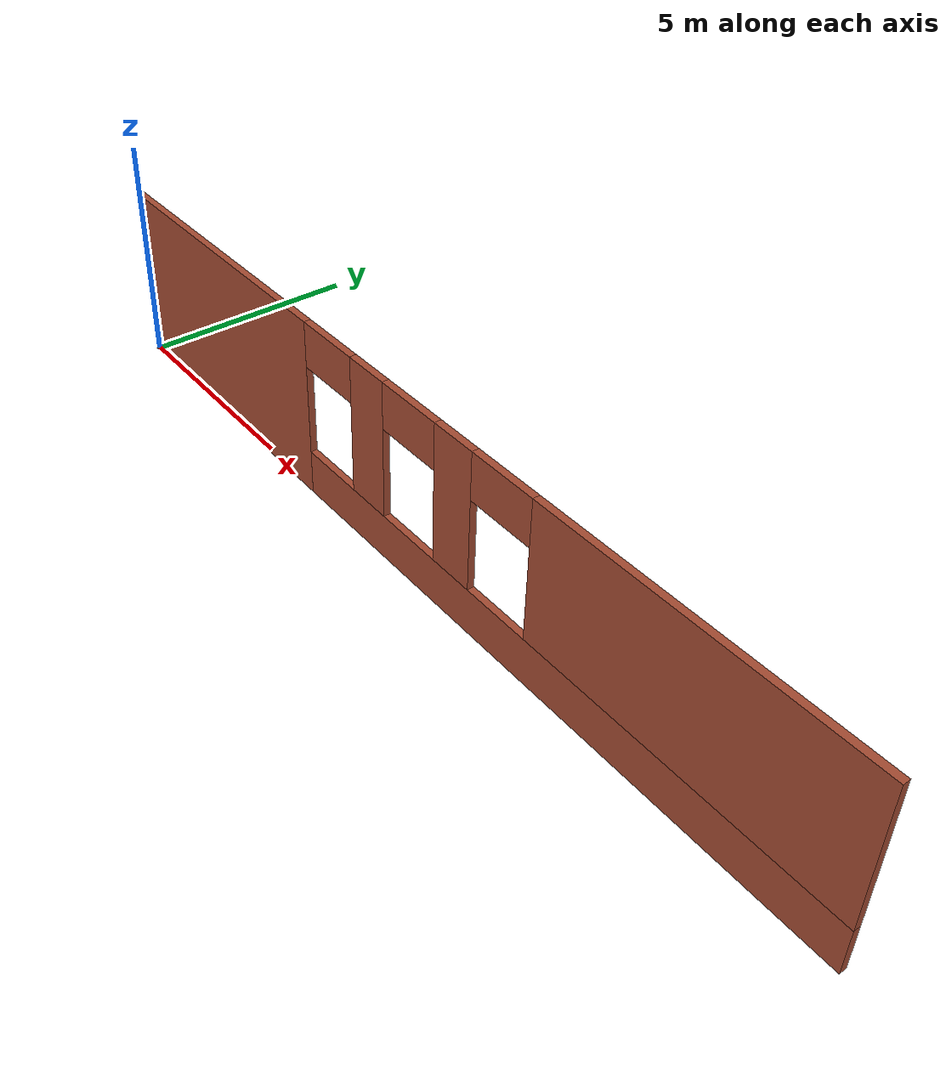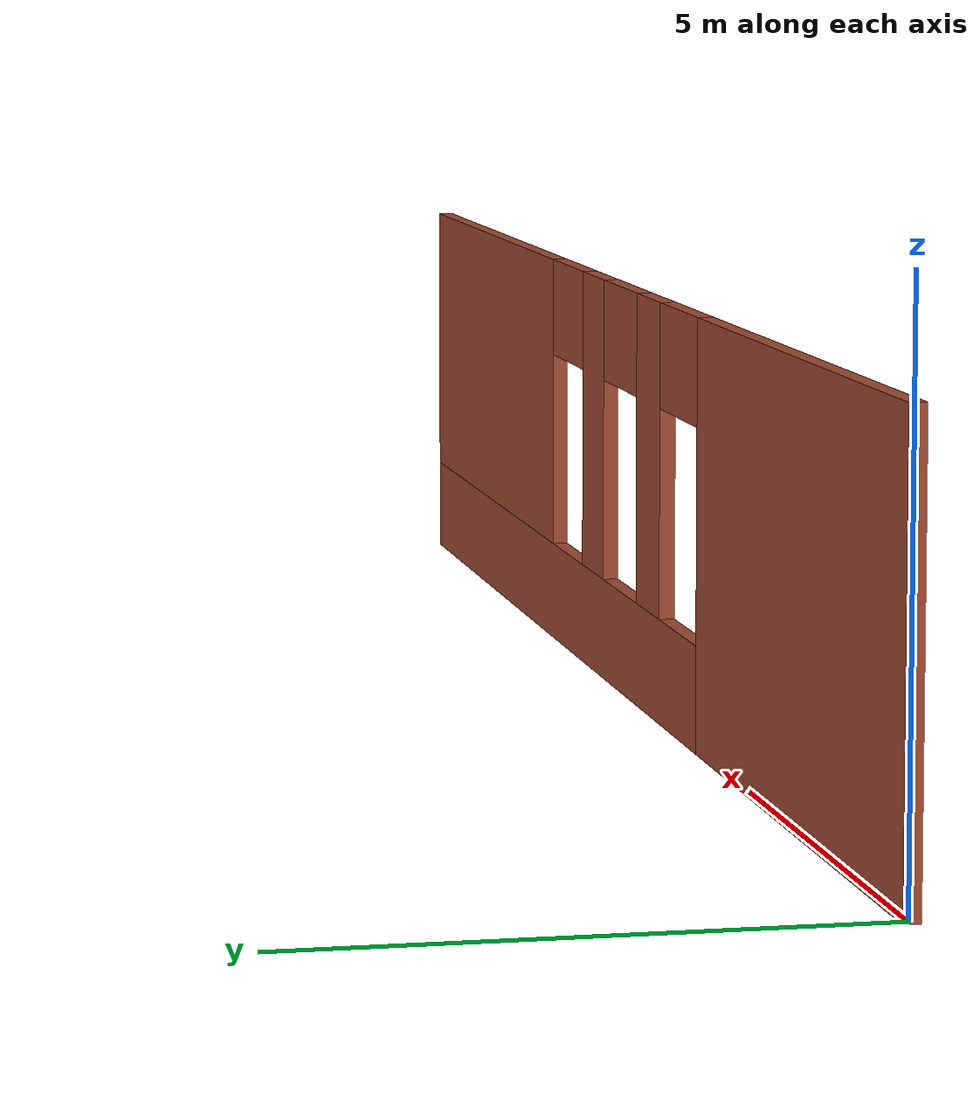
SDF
<?xml version='1.0'?>
<sdf version='1.7'>
  <model name='e_wall_3'>
    <pose>10 0 0 0 -0 0</pose>
    <link name='Wall_10'>
      <pose>-0 0 0 0 -0 0</pose>
      <visual name='Wall_10_Visual_0'>
        <pose>-6.6625 0 2 0 -0 0</pose>
        <geometry>
          <box>
            <size>6.825 0.15 4</size>
          </box>
        </geometry>
        <material>
          <script>
            <uri>model://e_wall_3/scripts</uri>
            <name>Bricks3_12</name>
          </script>
          <ambient>1 1 1 1</ambient>
        </material>
        <meta>
          <layer>0</layer>
        </meta>
      </visual>
      <collision name='Wall_10_Collision_0'>
        <geometry>
          <box>
            <size>6.825 0.15 4</size>
          </box>
        </geometry>
        <pose>-6.6625 0 2 0 -0 0</pose>
      </collision>
      <visual name='Wall_10_Visual_1'>
        <pose>3.4125 0 0.5 0 -0 0</pose>
        <geometry>
          <box>
            <size>13.325 0.15 1</size>
          </box>
        </geometry>
        <material>
          <script>
            <uri>model://e_wall_3/scripts</uri>
            <name>Bricks3_13</name>
          </script>
          <ambient>1 1 1 1</ambient>
        </material>
        <meta>
          <layer>0</layer>
        </meta>
      </visual>
      <collision name='Wall_10_Collision_1'>
        <geometry>
          <box>
            <size>13.325 0.15 1</size>
          </box>
        </geometry>
        <pose>3.4125 0 0.5 0 -0 0</pose>
      </collision>
      <visual name='Wall_10_Visual_2'>
        <pose>-1.25 0 2.5 0 -0 0</pose>
        <geometry>
          <box>
            <size>1 0.15 3</size>
          </box>
        </geometry>
        <material>
          <script>
            <uri>model://e_wall_3/scripts</uri>
            <name>Bricks3_14</name>
          </script>
          <ambient>1 1 1 1</ambient>
        </material>
        <meta>
          <layer>0</layer>
        </meta>
      </visual>
      <collision name='Wall_10_Collision_2'>
        <geometry>
          <box>
            <size>1 0.15 3</size>
          </box>
        </geometry>
        <pose>-1.25 0 2.5 0 -0 0</pose>
      </collision>
      <visual name='Wall_10_Visual_3'>
        <pose>1.25 0 2.5 0 -0 0</pose>
        <geometry>
          <box>
            <size>1 0.15 3</size>
          </box>
        </geometry>
        <material>
          <script>
            <uri>model://e_wall_3/scripts</uri>
            <name>Bricks3_14</name>
          </script>
          <ambient>1 1 1 1</ambient>
        </material>
        <meta>
          <layer>0</layer>
        </meta>
      </visual>
      <collision name='Wall_10_Collision_3'>
        <geometry>
          <box>
            <size>1 0.15 3</size>
          </box>
        </geometry>
        <pose>1.25 0 2.5 0 -0 0</pose>
      </collision>
      <visual name='Wall_10_Visual_4'>
        <pose>6.6625 0 2.5 0 -0 0</pose>
        <geometry>
          <box>
            <size>6.825 0.15 3</size>
          </box>
        </geometry>
        <material>
          <script>
            <uri>model://e_wall_3/scripts</uri>
            <name>Bricks3_15</name>
          </script>
          <ambient>1 1 1 1</ambient>
        </material>
        <meta>
          <layer>0</layer>
        </meta>
      </visual>
      <collision name='Wall_10_Collision_4'>
        <geometry>
          <box>
            <size>6.825 0.15 3</size>
          </box>
        </geometry>
        <pose>6.6625 0 2.5 0 -0 0</pose>
      </collision>
      <visual name='Wall_10_Visual_5'>
        <pose>-2.5 0 3.5 0 -0 0</pose>
        <geometry>
          <box>
            <size>1.5 0.15 1</size>
          </box>
        </geometry>
        <material>
          <script>
            <uri>model://e_wall_3/scripts</uri>
            <name>Bricks3_16</name>
          </script>
          <ambient>1 1 1 1</ambient>
        </material>
        <meta>
          <layer>0</layer>
        </meta>
      </visual>
      <collision name='Wall_10_Collision_5'>
        <geometry>
          <box>
            <size>1.5 0.15 1</size>
          </box>
        </geometry>
        <pose>-2.5 0 3.5 0 -0 0</pose>
      </collision>
      <visual name='Wall_10_Visual_6'>
        <pose>0 0 3.5 0 -0 0</pose>
        <geometry>
          <box>
            <size>1.5 0.15 1</size>
          </box>
        </geometry>
        <material>
          <script>
            <uri>model://e_wall_3/scripts</uri>
            <name>Bricks3_16</name>
          </script>
          <ambient>1 1 1 1</ambient>
        </material>
        <meta>
          <layer>0</layer>
        </meta>
      </visual>
      <collision name='Wall_10_Collision_6'>
        <geometry>
          <box>
            <size>1.5 0.15 1</size>
          </box>
        </geometry>
        <pose>0 0 3.5 0 -0 0</pose>
      </collision>
      <visual name='Wall_10_Visual_7'>
        <pose>2.5 0 3.5 0 -0 0</pose>
        <geometry>
          <box>
            <size>1.5 0.15 1</size>
          </box>
        </geometry>
        <material>
          <script>
            <uri>model://e_wall_3/scripts</uri>
            <name>Bricks3_16</name>
          </script>
          <ambient>1 1 1 1</ambient>
        </material>
        <meta>
          <layer>0</layer>
        </meta>
      </visual>
      <collision name='Wall_10_Collision_7'>
        <geometry>
          <box>
            <size>1.5 0.15 1</size>
          </box>
        </geometry>
        <pose>2.5 0 3.5 0 -0 0</pose>
      </collision>
    </link>
    <static>1</static>
  </model>
</sdf>
